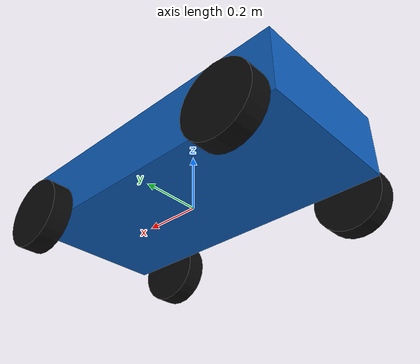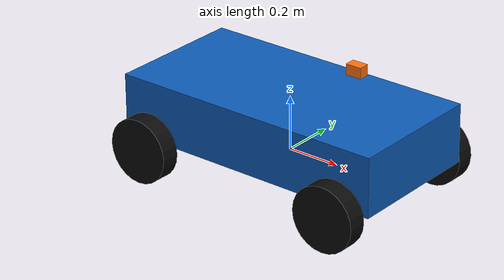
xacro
<?xml version="1.0"?>
<robot xmlns:xacro="http://www.ros.org/wiki/xacro" name="course_ackermann">
  <xacro:arg name="wheelbase" default="0.8"/>
  <xacro:arg name="track" default="0.62"/>
  <xacro:arg name="wheel_radius" default="0.12"/>
  <xacro:property name="wb" value="$(arg wheelbase)"/>
  <xacro:property name="tr" value="$(arg track)"/>
  <xacro:property name="radius" value="$(arg wheel_radius)"/>
  <xacro:property name="wheel_width" value="0.07"/>

  <material name="body_blue"><color rgba="0.05 0.36 0.72 1"/></material>
  <material name="wheel_black"><color rgba="0.04 0.04 0.04 1"/></material>
  <material name="sensor_orange"><color rgba="1 0.45 0.05 1"/></material>

  <xacro:macro name="box_link" params="name sx sy sz mass material z:=0.0">
    <link name="${name}">
      <visual>
        <origin xyz="0 0 ${z}"/>
        <geometry><box size="${sx} ${sy} ${sz}"/></geometry>
        <material name="${material}"/>
      </visual>
      <collision>
        <origin xyz="0 0 ${z}"/>
        <geometry><box size="${sx} ${sy} ${sz}"/></geometry>
      </collision>
      <inertial>
        <origin xyz="0 0 ${z}"/>
        <mass value="${mass}"/>
        <inertia ixx="${mass*(sy*sy+sz*sz)/12.0}" ixy="0" ixz="0"
                 iyy="${mass*(sx*sx+sz*sz)/12.0}" iyz="0"
                 izz="${mass*(sx*sx+sy*sy)/12.0}"/>
      </inertial>
    </link>
  </xacro:macro>

  <xacro:box_link name="base_link" sx="1.05" sy="0.52" sz="0.22"
                  mass="12.0" material="body_blue" z="0.12"/>

  <xacro:macro name="sensor" params="name">
    <xacro:box_link name="${name}_link" sx="0.06" sy="0.04" sz="0.04"
                    mass="0.033333333333" material="sensor_orange"/>
    <joint name="${name}_joint" type="fixed">
      <parent link="base_link"/>
      <child link="${name}_link"/>
      <origin xyz="0.28 0 0.38" rpy="0 0 0"/>
    </joint>
  </xacro:macro>

  <xacro:sensor name="camera"/>
  <xacro:box_link name="lidar_link" sx="0.06" sy="0.04" sz="0.04"
                  mass="0.033333333333" material="sensor_orange"/>
  <joint name="lidar_joint" type="fixed">
    <parent link="base_link"/>
    <child link="lidar_link"/>
    <origin xyz="0.28 0 0.38" rpy="0 0 0"/>
  </joint>
  <xacro:sensor name="imu"/>

  <xacro:macro name="wheel" params="name parent x y">
    <link name="${name}_wheel">
      <visual>
        <origin rpy="${pi/2.0} 0 0"/>
        <geometry><cylinder radius="${radius}" length="${wheel_width}"/></geometry>
        <material name="wheel_black"/>
      </visual>
      <collision>
        <origin rpy="${pi/2.0} 0 0"/>
        <geometry><cylinder radius="${radius}" length="${wheel_width}"/></geometry>
      </collision>
      <inertial>
        <mass value="0.8"/>
        <inertia ixx="${0.8*(3*radius*radius+wheel_width*wheel_width)/12.0}"
                 ixy="0" ixz="0" iyy="${0.8*radius*radius/2.0}" iyz="0"
                 izz="${0.8*(3*radius*radius+wheel_width*wheel_width)/12.0}"/>
      </inertial>
    </link>
    <joint name="${name}_wheel_joint" type="continuous">
      <parent link="${parent}"/>
      <child link="${name}_wheel"/>
      <origin xyz="${x} ${y} 0"/>
      <axis xyz="0 1 0"/>
    </joint>
  </xacro:macro>

  <xacro:macro name="front_assembly" params="side sign">
    <xacro:box_link name="front_${side}_knuckle" sx="0.04" sy="0.04" sz="0.04"
                    mass="0.2" material="wheel_black"/>
    <joint name="front_${side}_steering_joint" type="revolute">
      <parent link="base_link"/>
      <child link="front_${side}_knuckle"/>
      <origin xyz="${wb/2.0} ${sign*tr/2.0} 0"/>
      <axis xyz="0 0 1"/>
      <limit lower="-0.55" upper="0.55" effort="25" velocity="1.0"/>
    </joint>
    <xacro:wheel name="front_${side}" parent="front_${side}_knuckle" x="0" y="0"/>
  </xacro:macro>

  <xacro:front_assembly side="left" sign="1"/>
  <xacro:front_assembly side="right" sign="-1"/>
  <xacro:wheel name="rear_left" parent="base_link" x="${-wb/2.0}" y="${tr/2.0}"/>
  <xacro:wheel name="rear_right" parent="base_link" x="${-wb/2.0}" y="${-tr/2.0}"/>
</robot>
